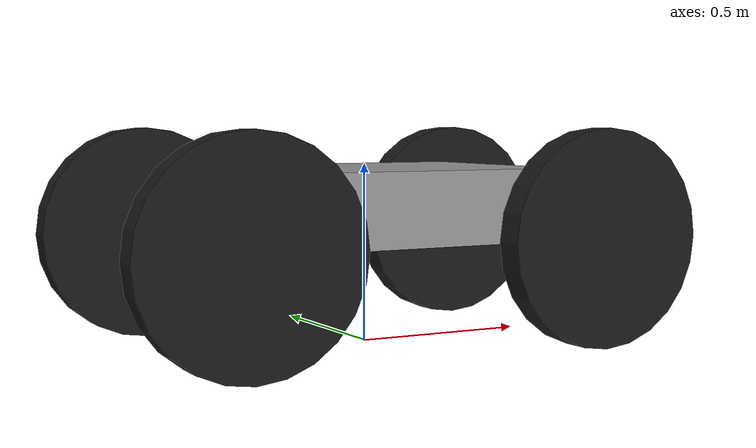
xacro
<?xml version="1.0"?>
<robot xmlns:xacro="http://www.ros.org/wiki/xacro" name="kratos_rover">

    <xacro:property name="chassis_len" value="0.9"/>      <!-- Update to match your physical chassis length -->
    <xacro:property name="chassis_width" value="0.65"/>    <!-- Update to match your physical chassis width -->
    <xacro:property name="chassis_height" value="0.2"/>

    <xacro:property name="wheel_radius" value="0.30"/>
    <xacro:property name="wheel_max_vel" value="${100.0 * 2.0 * pi / 60.0}"/>
    <xacro:property name="wheel_width" value="0.08"/>

    <xacro:property name="wheel_x_offset" value="0.516"/>
    <xacro:property name="wheel_y_offset" value="0.395"/>
    <xacro:property name="steer_z_offset" value="-0.05"/>
    <xacro:property name="steer_limit" value="1.57"/>

    <material name="gray"><color rgba="0.6 0.6 0.6 1.0"/></material>
    <material name="black"><color rgba="0.1 0.1 0.1 1.0"/></material>
    <material name="blue"><color rgba="0.0 0.3 0.8 1.0"/></material>

    <xacro:include filename="inertial_macros.xacro"/>
    <xacro:include filename="core_chassis.xacro"/>
    <xacro:include filename="wheel_macro.xacro"/>

    <xacro:swerve_wheel prefix="fl" x_reflect="1" y_reflect="1"/>
    <xacro:swerve_wheel prefix="fr" x_reflect="1" y_reflect="-1"/>
    <xacro:swerve_wheel prefix="rl" x_reflect="-1" y_reflect="1"/>
    <xacro:swerve_wheel prefix="rr" x_reflect="-1" y_reflect="-1"/>

    <xacro:include filename="ros2_control.xacro"/>
    <xacro:include filename="gazebo_plugins.xacro"/>

</robot>

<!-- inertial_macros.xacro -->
<robot xmlns:xacro="http://www.ros.org/wiki/xacro">
    <xacro:macro name="inertial_box" params="mass x y z *origin">
        <inertial>
            <xacro:insert_block name="origin"/>
            <mass value="${mass}" />
            <inertia ixx="${(1/12) * mass * (y*y+z*z)}" ixy="0.0" ixz="0.0"
                     iyy="${(1/12) * mass * (x*x+z*z)}" iyz="0.0"
                     izz="${(1/12) * mass * (x*x+y*y)}" />
        </inertial>
    </xacro:macro>

    <xacro:macro name="inertial_cylinder" params="mass length radius *origin">
        <inertial>
            <xacro:insert_block name="origin"/>
            <mass value="${mass}" />
            <inertia ixx="${(1/12) * mass * (3*radius*radius + length*length)}" ixy="0.0" ixz="0.0"
                     iyy="${(1/12) * mass * (3*radius*radius + length*length)}" iyz="0.0"
                     izz="${(1/2) * mass * (radius*radius)}" />
        </inertial>
    </xacro:macro>
</robot>

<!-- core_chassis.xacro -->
<robot xmlns:xacro="http://www.ros.org/wiki/xacro">

    <link name="base_footprint"/>

    <joint name="base_joint" type="fixed">
        <parent link="base_footprint"/>
        <child link="base_link"/>
        <!-- wheel centre = base_link z - 0.05 (steer) - 0.04 (drive) -> footprint height = wheel_radius + 0.09 -->
        <origin xyz="0 0 ${wheel_radius + 0.09}" rpy="0 0 0"/>
    </joint>

    <link name="base_link">
        <visual>
            <origin xyz="0 0 0" rpy="0 0 0"/>
            <geometry>
                <box size="${chassis_len} ${chassis_width} ${chassis_height}"/>
            </geometry>
            <material name="gray"/>
        </visual>
        <collision>
            <origin xyz="0 0 0" rpy="0 0 0"/>
            <geometry>
                <box size="${chassis_len} ${chassis_width} ${chassis_height}"/>
            </geometry>
        </collision>
        <xacro:inertial_box mass="15.0" x="${chassis_len}" y="${chassis_width}" z="${chassis_height}">
            <origin xyz="0 0 0" rpy="0 0 0"/>
        </xacro:inertial_box>
    </link>
</robot>

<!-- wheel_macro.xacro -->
<robot xmlns:xacro="http://www.ros.org/wiki/xacro">
    <xacro:macro name="swerve_wheel" params="prefix x_reflect y_reflect">

        <link name="${prefix}_steer_link">
            <visual>
                <origin xyz="0 0 -0.02" rpy="0 0 0"/>
                <geometry>
                    <cylinder radius="0.02" length="0.04"/>
                </geometry>
                <material name="blue"/>
            </visual>
            <xacro:inertial_cylinder mass="0.5" length="0.04" radius="0.02">
                <origin xyz="0 0 -0.02" rpy="0 0 0"/>
            </xacro:inertial_cylinder>
        </link>

        <joint name="${prefix}_steer_joint" type="revolute">
            <parent link="base_link"/>
            <child link="${prefix}_steer_link"/>
            <origin xyz="${x_reflect * wheel_x_offset} ${y_reflect * wheel_y_offset} ${steer_z_offset}" rpy="0 0 0"/>
            <axis xyz="0 0 -1"/>
            <limit lower="-${steer_limit}" upper="${steer_limit}" effort="10.0" velocity="2.0"/>
        </joint>

        <link name="${prefix}_wheel_link">
            <visual>
                <origin xyz="0 0 0" rpy="${pi/2} 0 0"/>
                <geometry>
                    <cylinder radius="${wheel_radius}" length="${wheel_width}"/>
                </geometry>
                <material name="black"/>
            </visual>
            <collision>
                <origin xyz="0 0 0" rpy="${pi/2} 0 0"/>
                <geometry>
                    <cylinder radius="${wheel_radius}" length="${wheel_width}"/>
                </geometry>
            </collision>
            <xacro:inertial_cylinder mass="1.5" length="${wheel_width}" radius="${wheel_radius}">
                <origin xyz="0 0 0" rpy="${pi/2} 0 0"/>
            </xacro:inertial_cylinder>
        </link>

        <joint name="${prefix}_drive_joint" type="continuous">
            <parent link="${prefix}_steer_link"/>
            <child link="${prefix}_wheel_link"/>
            <origin xyz="0 0 -0.04" rpy="0 0 0"/>
            <axis xyz="0 1 0"/>
            <limit effort="50.0" velocity="${wheel_max_vel}"/>
        </joint>
    </xacro:macro>
</robot>
